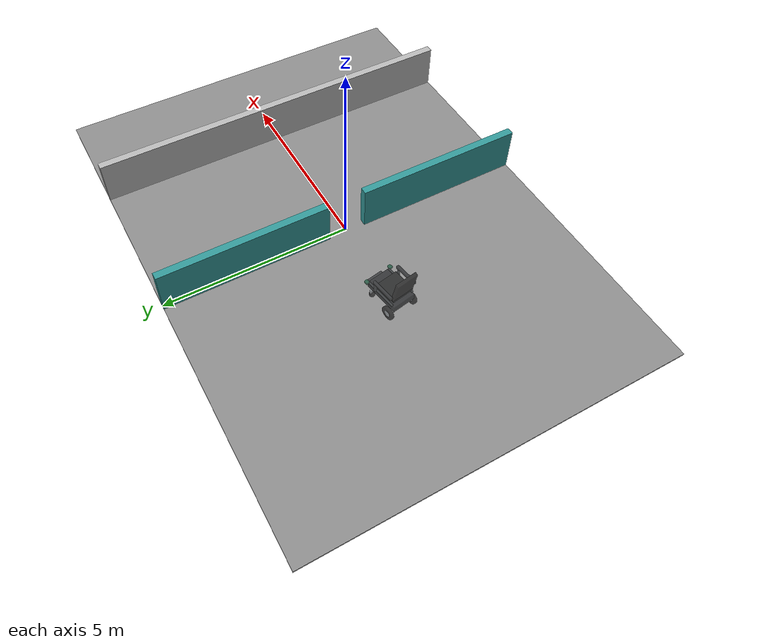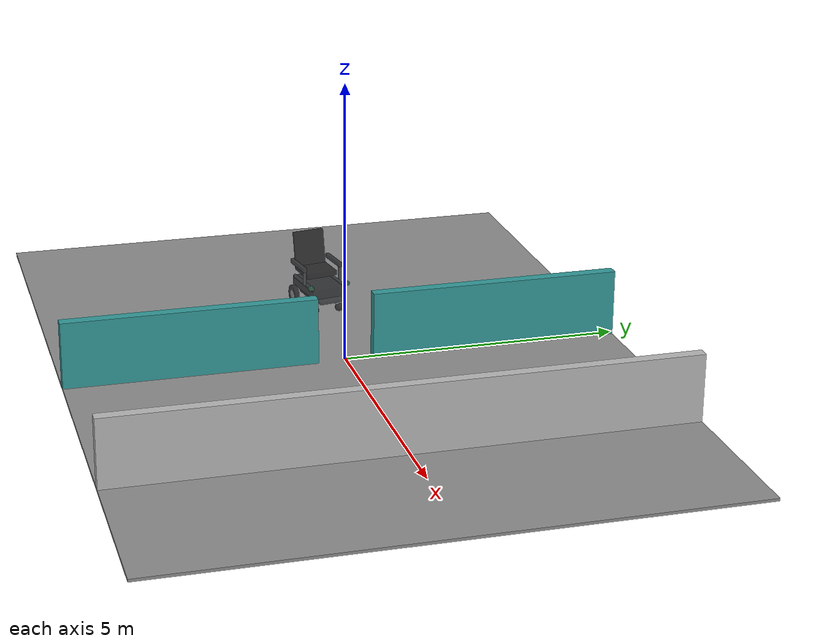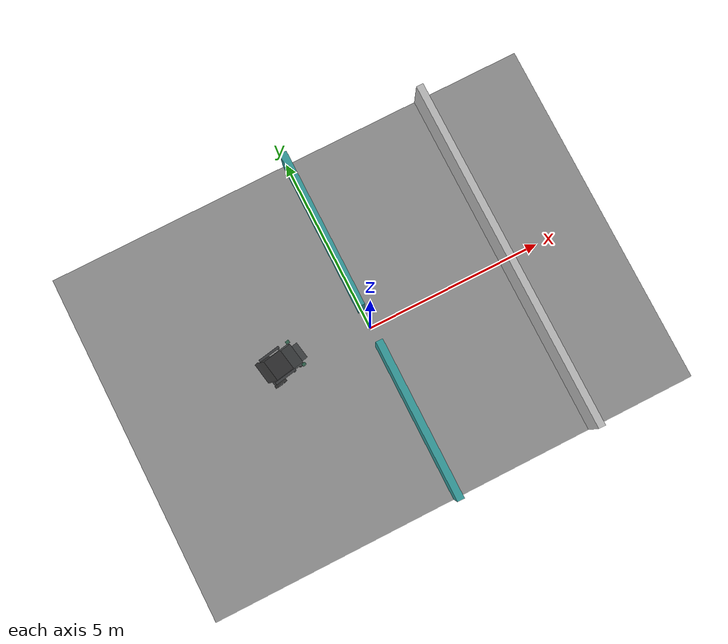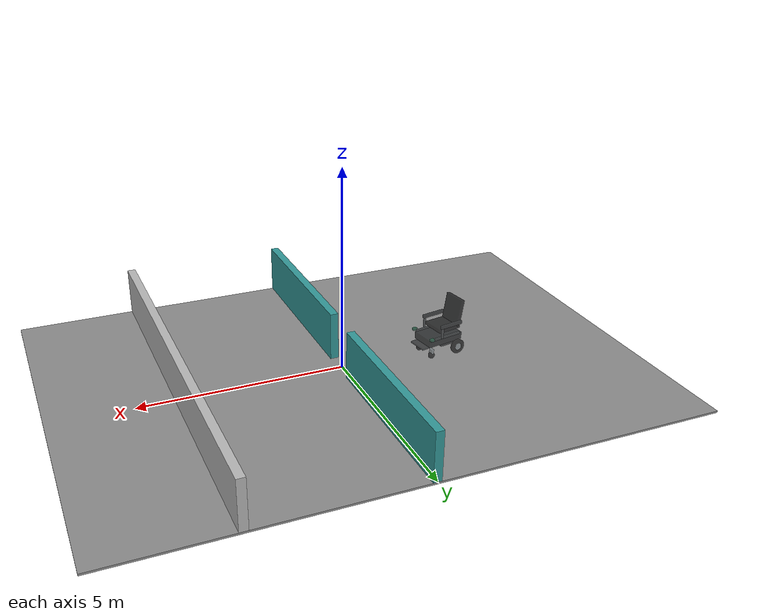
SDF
<?xml version="1.0"?>
<sdf version="1.10">
  <world name="unified_door">
    <physics name="1ms" type="ignored"><max_step_size>0.001</max_step_size><real_time_factor>1</real_time_factor></physics>
    <plugin filename="gz-sim-physics-system" name="gz::sim::systems::Physics"/>
    <plugin filename="gz-sim-user-commands-system" name="gz::sim::systems::UserCommands"/>
    <plugin filename="gz-sim-scene-broadcaster-system" name="gz::sim::systems::SceneBroadcaster"/>
    <plugin filename="gz-sim-sensors-system" name="gz::sim::systems::Sensors"><render_engine>ogre2</render_engine></plugin>
    <light name="sun" type="directional"><pose>0 0 8 0 0 0</pose><diffuse>0.9 0.9 0.9 1</diffuse><direction>-0.4 0.2 -0.9</direction></light>
    <model name="floor"><static>true</static><pose>0 0 -0.025 0 0 0</pose><link name="link">
      <collision name="collision"><geometry><box><size>14 10 0.05</size></box></geometry></collision>
      <visual name="visual"><geometry><box><size>14 10 0.05</size></box></geometry><material><ambient>0.55 0.55 0.55 1</ambient><diffuse>0.55 0.55 0.55 1</diffuse></material></visual>
    </link></model>
    <!-- Inner faces at y=+/-0.5: exactly 1.0 m clear, 0.2 m wall thickness. -->
    <model name="left_jamb"><static>true</static><pose>0 2.75 0.6 0 0 0</pose><link name="link">
      <collision name="collision"><geometry><box><size>0.2 4.5 1.2</size></box></geometry></collision>
      <visual name="visual"><geometry><box><size>0.2 4.5 1.2</size></box></geometry><material><ambient>0.2 0.6 0.6 1</ambient><diffuse>0.2 0.6 0.6 1</diffuse></material></visual>
    </link></model>
    <model name="right_jamb"><static>true</static><pose>0 -2.75 0.6 0 0 0</pose><link name="link">
      <collision name="collision"><geometry><box><size>0.2 4.5 1.2</size></box></geometry></collision>
      <visual name="visual"><geometry><box><size>0.2 4.5 1.2</size></box></geometry><material><ambient>0.2 0.6 0.6 1</ambient><diffuse>0.2 0.6 0.6 1</diffuse></material></visual>
    </link></model>
    <model name="exit_wall"><static>true</static><pose>4 0 0.6 0 0 0</pose><link name="link">
      <collision name="collision"><geometry><box><size>0.2 10 1.2</size></box></geometry></collision>
      <visual name="visual"><geometry><box><size>0.2 10 1.2</size></box></geometry></visual>
    </link></model>
    <include><uri>model://smart_wheelchair</uri><pose>-2.5 0.15 0.04 0 0 0.174533</pose></include>
  </world>
</sdf>

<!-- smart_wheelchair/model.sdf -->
<sdf version="1.6">
  <model name="smart_wheelchair">
    <pose>0 0 0 0 0 0</pose>

    <link name="base_link">
      <inertial>
        <mass>65.0</mass>
        <inertia>
          <ixx>3.0</ixx><ixy>0</ixy><ixz>0</ixz>
          <iyy>4.0</iyy><iyz>0</iyz>
          <izz>3.0</izz>
        </inertia>
      </inertial>

      <collision name="base_collision">
        <pose>0 0 0.42 0 0 0</pose>
        <geometry><box><size>0.95 0.62 0.18</size></box></geometry>
      </collision>
      <visual name="base_visual">
        <transparency>0.35</transparency>
        <pose>0 0 0.42 0 0 0</pose>
        <geometry><box><size>0.95 0.62 0.18</size></box></geometry>
        <material><ambient>0.06 0.07 0.08 1</ambient><diffuse>0.06 0.07 0.08 1</diffuse></material>
      </visual>

      <visual name="seat_visual">
        <transparency>0.35</transparency>
        <pose>-0.12 0 0.68 0 0 0</pose>
        <geometry><box><size>0.60 0.58 0.09</size></box></geometry>
        <material><ambient>0.015 0.017 0.02 1</ambient><diffuse>0.015 0.017 0.02 1</diffuse></material>
      </visual>

      <visual name="backrest_visual">
        <transparency>0.35</transparency>
        <pose>-0.43 0 1.00 0 -0.18 0</pose>
        <geometry><box><size>0.09 0.58 0.70</size></box></geometry>
        <material><ambient>0.015 0.017 0.02 1</ambient><diffuse>0.015 0.017 0.02 1</diffuse></material>
      </visual>

      <visual name="left_armrest_visual">
        <transparency>0.35</transparency>
        <pose>-0.10 0.36 0.83 0 0 0</pose>
        <geometry><box><size>0.62 0.06 0.08</size></box></geometry>
        <material><ambient>0.08 0.09 0.10 1</ambient><diffuse>0.08 0.09 0.10 1</diffuse></material>
      </visual>

      <visual name="right_armrest_visual">
        <transparency>0.35</transparency>
        <pose>-0.10 -0.36 0.83 0 0 0</pose>
        <geometry><box><size>0.62 0.06 0.08</size></box></geometry>
        <material><ambient>0.08 0.09 0.10 1</ambient><diffuse>0.08 0.09 0.10 1</diffuse></material>
      </visual>

      <visual name="left_arm_support_front_visual">
        <transparency>0.35</transparency>
        <pose>0.16 0.36 0.67 0 0 0</pose>
        <geometry><box><size>0.045 0.045 0.28</size></box></geometry>
        <material><ambient>0.16 0.18 0.19 1</ambient><diffuse>0.16 0.18 0.19 1</diffuse></material>
      </visual>

      <visual name="right_arm_support_front_visual">
        <transparency>0.35</transparency>
        <pose>0.16 -0.36 0.67 0 0 0</pose>
        <geometry><box><size>0.045 0.045 0.28</size></box></geometry>
        <material><ambient>0.16 0.18 0.19 1</ambient><diffuse>0.16 0.18 0.19 1</diffuse></material>
      </visual>

      <visual name="footplate_visual">
        <transparency>0.35</transparency>
        <pose>0.48 0 0.30 0 0 0</pose>
        <geometry><box><size>0.32 0.48 0.045</size></box></geometry>
        <material><ambient>0.12 0.13 0.14 1</ambient><diffuse>0.12 0.13 0.14 1</diffuse></material>
      </visual>

      <visual name="left_frame_rail_visual">
        <transparency>0.35</transparency>
        <pose>0.02 0.31 0.52 0 0 0</pose>
        <geometry><box><size>0.86 0.035 0.06</size></box></geometry>
        <material><ambient>0.13 0.15 0.16 1</ambient><diffuse>0.13 0.15 0.16 1</diffuse></material>
      </visual>

      <visual name="right_frame_rail_visual">
        <transparency>0.35</transparency>
        <pose>0.02 -0.31 0.52 0 0 0</pose>
        <geometry><box><size>0.86 0.035 0.06</size></box></geometry>
        <material><ambient>0.13 0.15 0.16 1</ambient><diffuse>0.13 0.15 0.16 1</diffuse></material>
      </visual>

      <visual name="battery_visual">
        <transparency>0.35</transparency>
        <pose>-0.15 0 0.27 0 0 0</pose>
        <geometry><box><size>0.42 0.44 0.12</size></box></geometry>
        <material><ambient>0.08 0.09 0.10 1</ambient><diffuse>0.08 0.09 0.10 1</diffuse></material>
      </visual>

      <visual name="left_lidar_body_visual">
        <transparency>0.35</transparency>
        <plugin name="faint_left_lidar" filename="libSmartWheelChairFaintLidarVisual.so">
          <sensor>left_lidar</sensor>
        </plugin>
        <pose>0.46 0.36 0.56 0 0 0</pose>
        <geometry><box><size>0.10 0.08 0.055</size></box></geometry>
        <material><ambient>0.02 0.30 0.18 1</ambient><diffuse>0.02 0.30 0.18 1</diffuse></material>
      </visual>

      <visual name="right_lidar_body_visual">
        <transparency>0.35</transparency>
        <plugin name="faint_right_lidar" filename="libSmartWheelChairFaintLidarVisual.so">
          <sensor>right_lidar</sensor>
        </plugin>
        <pose>0.46 -0.36 0.56 0 0 0</pose>
        <geometry><box><size>0.10 0.08 0.055</size></box></geometry>
        <material><ambient>0.02 0.30 0.18 1</ambient><diffuse>0.02 0.30 0.18 1</diffuse></material>
      </visual>

      <sensor name="left_lidar" type="ray">
        <pose>0.46 0.36 0.56 0 0 0</pose>
        <update_rate>10</update_rate>
        <ray>
          <scan>
            <horizontal>
              <samples>721</samples>
              <resolution>1</resolution>
              <min_angle>-3.141592653589793</min_angle>
              <max_angle>3.141592653589793</max_angle>
            </horizontal>
          </scan>
          <range>
            <min>0.08</min>
            <max>5.0</max>
            <resolution>0.01</resolution>
          </range>
        </ray>
        <plugin name="left_lidar_ros" filename="libgazebo_ros_laser.so">
          <robotNamespace>/</robotNamespace>
          <topicName>/scan_left</topicName>
          <frameName>left_lidar</frameName>
        </plugin>
        <always_on>true</always_on>
        <visualize>true</visualize>
      </sensor>

      <sensor name="right_lidar" type="ray">
        <pose>0.46 -0.36 0.56 0 0 0</pose>
        <update_rate>10</update_rate>
        <ray>
          <scan>
            <horizontal>
              <samples>721</samples>
              <resolution>1</resolution>
              <min_angle>-3.141592653589793</min_angle>
              <max_angle>3.141592653589793</max_angle>
            </horizontal>
          </scan>
          <range>
            <min>0.08</min>
            <max>5.0</max>
            <resolution>0.01</resolution>
          </range>
        </ray>
        <plugin name="right_lidar_ros" filename="libgazebo_ros_laser.so">
          <robotNamespace>/</robotNamespace>
          <topicName>/scan_right</topicName>
          <frameName>right_lidar</frameName>
        </plugin>
        <always_on>true</always_on>
        <visualize>true</visualize>
      </sensor>

      <sensor name="rear_camera" type="camera">
        <pose>-0.58 0 0.72 0 0.60 3.1416</pose>
        <update_rate>15</update_rate>
        <camera>
          <horizontal_fov>2.094</horizontal_fov>
          <image>
            <width>640</width>
            <height>360</height>
            <format>R8G8B8</format>
          </image>
          <clip>
            <near>0.05</near>
            <far>10.0</far>
          </clip>
        </camera>
        <plugin name="rear_camera_ros" filename="libgazebo_ros_camera.so">
          <robotNamespace>/</robotNamespace>
          <cameraName>camera/rear</cameraName>
          <imageTopicName>image</imageTopicName>
          <cameraInfoTopicName>camera_info</cameraInfoTopicName>
          <frameName>rear_camera</frameName>
        </plugin>
        <always_on>true</always_on>
      </sensor>
    </link>

    <link name="left_rear_wheel">
      <pose>-0.33 0.36 0.18 0 0 0</pose>
      <inertial><mass>2.0</mass><inertia><ixx>0.02</ixx><iyy>0.02</iyy><izz>0.02</izz></inertia></inertial>
      <collision name="collision"><pose>0 0 0 1.5708 0 0</pose><geometry><cylinder><radius>0.18</radius><length>0.07</length></cylinder></geometry></collision>
      <visual name="visual">
        <transparency>0.35</transparency><pose>0 0 0 1.5708 0 0</pose><geometry><cylinder><radius>0.18</radius><length>0.07</length></cylinder></geometry><material><ambient>0.03 0.03 0.03 1</ambient><diffuse>0.03 0.03 0.03 1</diffuse></material></visual>
      <visual name="left_rear_hub_visual">
        <transparency>0.35</transparency><pose>0 0 0 1.5708 0 0</pose><geometry><cylinder><radius>0.09</radius><length>0.08</length></cylinder></geometry><material><ambient>0.55 0.58 0.60 1</ambient><diffuse>0.55 0.58 0.60 1</diffuse></material></visual>
    </link>

    <link name="right_rear_wheel">
      <pose>-0.33 -0.36 0.18 0 0 0</pose>
      <inertial><mass>2.0</mass><inertia><ixx>0.02</ixx><iyy>0.02</iyy><izz>0.02</izz></inertia></inertial>
      <collision name="collision"><pose>0 0 0 1.5708 0 0</pose><geometry><cylinder><radius>0.18</radius><length>0.07</length></cylinder></geometry></collision>
      <visual name="visual">
        <transparency>0.35</transparency><pose>0 0 0 1.5708 0 0</pose><geometry><cylinder><radius>0.18</radius><length>0.07</length></cylinder></geometry><material><ambient>0.03 0.03 0.03 1</ambient><diffuse>0.03 0.03 0.03 1</diffuse></material></visual>
      <visual name="right_rear_hub_visual">
        <transparency>0.35</transparency><pose>0 0 0 1.5708 0 0</pose><geometry><cylinder><radius>0.09</radius><length>0.08</length></cylinder></geometry><material><ambient>0.55 0.58 0.60 1</ambient><diffuse>0.55 0.58 0.60 1</diffuse></material></visual>
    </link>

    <link name="left_front_caster">
      <pose>0.38 0.25 0.08 0 0 0</pose>
      <inertial><mass>0.6</mass><inertia><ixx>0.002</ixx><iyy>0.002</iyy><izz>0.002</izz></inertia></inertial>
      <collision name="collision"><geometry><sphere><radius>0.08</radius></sphere></geometry></collision>
      <visual name="visual">
        <transparency>0.35</transparency><geometry><sphere><radius>0.08</radius></sphere></geometry><material><ambient>0.05 0.05 0.055 1</ambient><diffuse>0.05 0.05 0.055 1</diffuse></material></visual>
      <visual name="left_caster_fork_visual">
        <transparency>0.35</transparency><pose>0 0 0.11 0 0 0</pose><geometry><box><size>0.05 0.12 0.12</size></box></geometry><material><ambient>0.55 0.58 0.60 1</ambient><diffuse>0.55 0.58 0.60 1</diffuse></material></visual>
    </link>

    <link name="right_front_caster">
      <pose>0.38 -0.25 0.08 0 0 0</pose>
      <inertial><mass>0.6</mass><inertia><ixx>0.002</ixx><iyy>0.002</iyy><izz>0.002</izz></inertia></inertial>
      <collision name="collision"><geometry><sphere><radius>0.08</radius></sphere></geometry></collision>
      <visual name="visual">
        <transparency>0.35</transparency><geometry><sphere><radius>0.08</radius></sphere></geometry><material><ambient>0.05 0.05 0.055 1</ambient><diffuse>0.05 0.05 0.055 1</diffuse></material></visual>
      <visual name="right_caster_fork_visual">
        <transparency>0.35</transparency><pose>0 0 0.11 0 0 0</pose><geometry><box><size>0.05 0.12 0.12</size></box></geometry><material><ambient>0.55 0.58 0.60 1</ambient><diffuse>0.55 0.58 0.60 1</diffuse></material></visual>
    </link>

    <link name="rear_axle">
      <pose>-0.33 0 0 0 0 0</pose>
      <inertial>
        <mass>0.001</mass>
        <inertia><ixx>0.000001</ixx><iyy>0.000001</iyy><izz>0.000001</izz></inertia>
      </inertial>
    </link>
    <joint name="rear_axle_joint" type="fixed">
      <parent>base_link</parent>
      <child>rear_axle</child>
    </joint>

    <joint name="left_rear_wheel_joint" type="revolute">
      <parent>base_link</parent>
      <child>left_rear_wheel</child>
      <axis>
        <xyz>0 1 0</xyz>
        <limit><lower>-1e16</lower><upper>1e16</upper></limit>
      </axis>
    </joint>

    <joint name="right_rear_wheel_joint" type="revolute">
      <parent>base_link</parent>
      <child>right_rear_wheel</child>
      <axis>
        <xyz>0 1 0</xyz>
        <limit><lower>-1e16</lower><upper>1e16</upper></limit>
      </axis>
    </joint>

    <joint name="left_front_caster_joint" type="ball">
      <parent>base_link</parent>
      <child>left_front_caster</child>
    </joint>

    <joint name="right_front_caster_joint" type="ball">
      <parent>base_link</parent>
      <child>right_front_caster</child>
    </joint>

    <plugin name="differential_drive_controller" filename="libgazebo_ros_diff_drive.so">
      <robotNamespace>/</robotNamespace>
      <rosDebugLevel>na</rosDebugLevel>
      <publishWheelJointState>false</publishWheelJointState>
      <wheelAcceleration>0</wheelAcceleration>
      <wheelTorque>5</wheelTorque>
      <publishTf>true</publishTf>
      <alwaysOn>true</alwaysOn>
      <updateRate>50</updateRate>
      <leftJoint>left_rear_wheel_joint</leftJoint>
      <rightJoint>right_rear_wheel_joint</rightJoint>
      <wheelSeparation>0.72</wheelSeparation>
      <wheelDiameter>0.36</wheelDiameter>
      <commandTopic>/cmd_vel</commandTopic>
      <odometryTopic>/diff_drive/odom</odometryTopic>
      <odometryFrame>odom</odometryFrame>
      <robotBaseFrame>rear_axle</robotBaseFrame>
      <publishWheelTF>false</publishWheelTF>
      <publishOdomTF>false</publishOdomTF>
      <odometrySource>world</odometrySource>
    </plugin>

    <!-- P3D measures the link itself; diff-drive world odometry measures the model origin. -->
    <plugin name="rear_axle_ground_truth" filename="libgazebo_ros_p3d.so">
      <robotNamespace>/</robotNamespace>
      <bodyName>rear_axle</bodyName>
      <topicName>/rear_axle_ground_truth</topicName>
      <frameName>world</frameName>
      <localTwist>true</localTwist>
      <updateRate>50</updateRate>
      <gaussianNoise>0</gaussianNoise>
    </plugin>

    <plugin filename="libSmartWheelChairTrajectoryPreview.so" name="smart_wheelchair_gazebo::TrajectoryPreviewPlugin">
      <cmd_topic>/cmd_vel_raw</cmd_topic>
      <filtered_cmd_topic>/cmd_vel</filtered_cmd_topic>
      <prediction_seconds>3.0</prediction_seconds>
      <step_seconds>0.3</step_seconds>
      <command_timeout_s>0.5</command_timeout_s>
      <rear_axle_x_m>-0.33</rear_axle_x_m>
      <wheel_separation_m>0.72</wheel_separation_m>
      <z_m>0.18</z_m>
    </plugin>
  </model>
</sdf>
